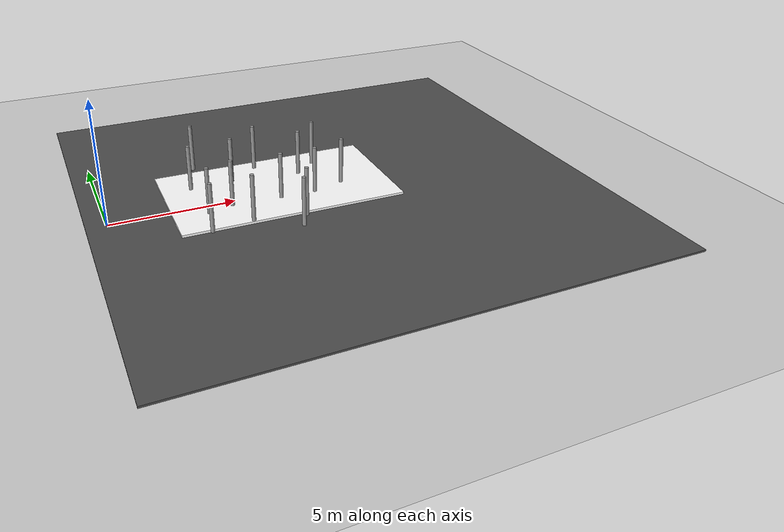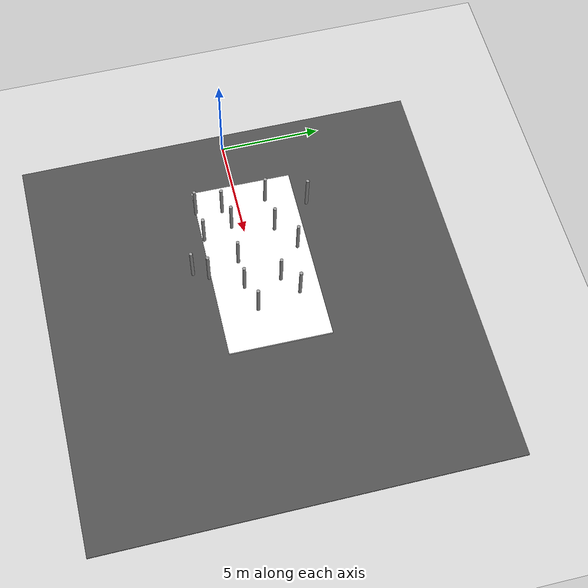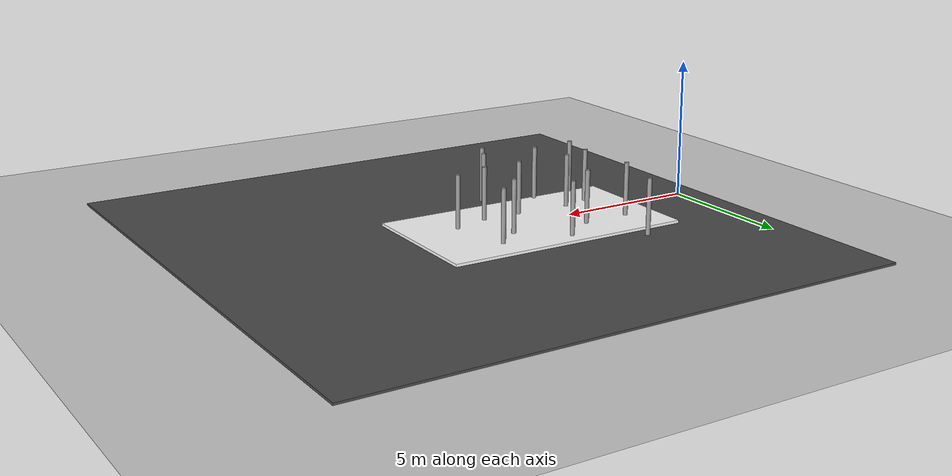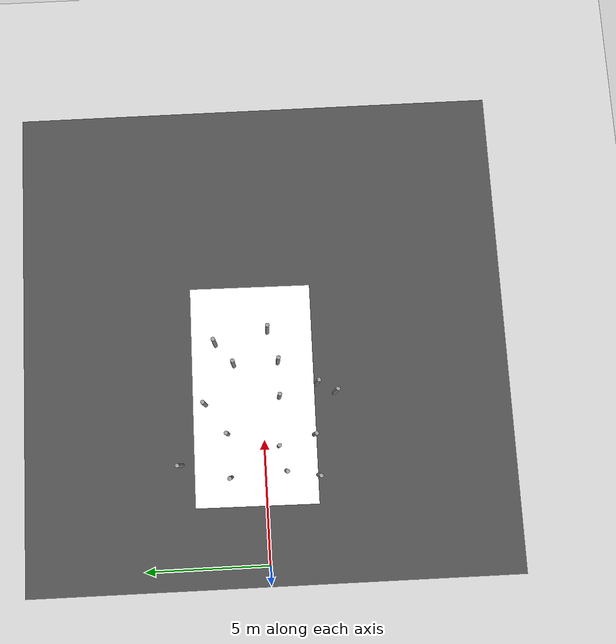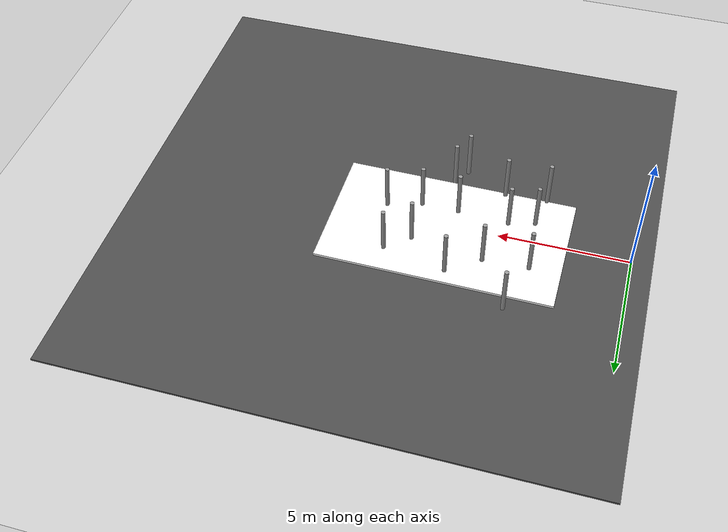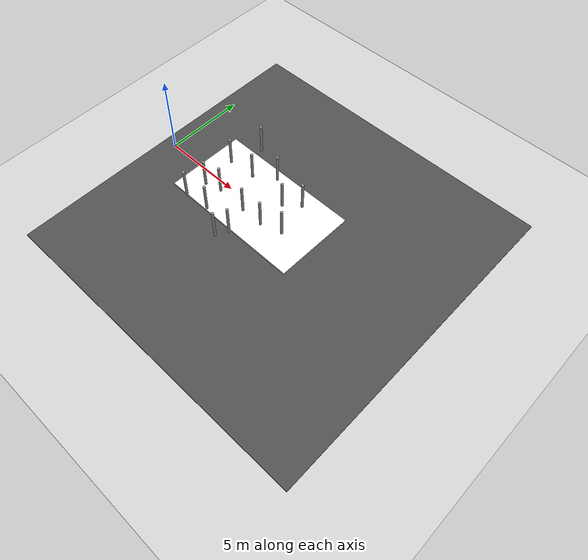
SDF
<sdf version="1.6">
 <world name="default">
  <model name="ground_plane">
   <static>1</static>
   <link name="link">
    <collision name="collision">
     <geometry><plane><normal>0 0 1</normal><size>100 100</size></plane></geometry>
     <surface><friction><ode><mu>100</mu><mu2>50</mu2></ode></friction></surface>
    </collision>
    <visual name="visual">
     <cast_shadows>0</cast_shadows>
     <geometry><plane><normal>0 0 1</normal><size>100 100</size></plane></geometry>
     <material>
      <script><uri>file://media/materials/scripts/gazebo.material</uri><name>Gazebo/Grey</name></script>
     </material>
    </visual>
   </link>
  </model>
  <model name="poste_16x200_clone_6_clone_9">
   <link name="link_1">
    <inertial>
     <mass>1</mass>
     <inertia><ixx>0.145833</ixx><ixy>0</ixy><ixz>0</ixz><iyy>0.145833</iyy><iyz>0</iyz><izz>0.125</izz></inertia>
    </inertial>
    <pose>5e-06 3e-06 0 0 -0 0</pose>
    <visual name="visual">
     <geometry><cylinder><radius>0.08</radius><length>2</length></cylinder></geometry>
     <material>
      <lighting>1</lighting>
      <script><uri>file://media/materials/scripts/gazebo.material</uri><name>Gazebo/Grey</name></script>
      <shader type="vertex"><normal_map>__default__</normal_map></shader>
      <ambient>0.3 0.3 0.3 1</ambient>
      <diffuse>0.7 0.7 0.7 1</diffuse>
      <specular>0.01 0.01 0.01 1</specular>
      <emissive>0 0 0 1</emissive>
     </material>
    </visual>
    <collision name="collision">
     <geometry><cylinder><radius>0.08</radius><length>2</length></cylinder></geometry>
     <surface>
      <friction>
       <ode><mu>1</mu><mu2>1</mu2><fdir1>0 0 0</fdir1><slip1>0</slip1><slip2>0</slip2></ode>
       <torsional>
        <coefficient>1</coefficient>
        <patch_radius>0</patch_radius>
        <surface_radius>0</surface_radius>
        <use_patch_radius>1</use_patch_radius>
        <ode><slip>0</slip></ode>
       </torsional>
      </friction>
      <bounce><restitution_coefficient>0</restitution_coefficient><threshold>1e+06</threshold></bounce>
      <contact>
       <collide_without_contact>0</collide_without_contact>
       <collide_without_contact_bitmask>1</collide_without_contact_bitmask>
       <collide_bitmask>1</collide_bitmask>
       <ode>
        <soft_cfm>0</soft_cfm>
        <soft_erp>0.2</soft_erp>
        <kp>1e+13</kp>
        <kd>1</kd>
        <max_vel>0.01</max_vel>
        <min_depth>0</min_depth>
       </ode>
       <bullet>
        <split_impulse>1</split_impulse>
        <split_impulse_penetration_threshold>-0.01</split_impulse_penetration_threshold>
        <soft_cfm>0</soft_cfm>
        <soft_erp>0.2</soft_erp>
        <kp>1e+13</kp>
        <kd>1</kd>
       </bullet>
      </contact>
     </surface>
    </collision>
   </link>
   <static>0</static>
   <pose>6.7957 -2.95609 1.05 -6.3e-05 3e-05 -0.033285</pose>
  </model>
  <model name="poste_16x200_clone_6_clone_14">
   <link name="link_1">
    <inertial>
     <mass>1</mass>
     <inertia><ixx>0.145833</ixx><ixy>0</ixy><ixz>0</ixz><iyy>0.145833</iyy><iyz>0</iyz><izz>0.125</izz></inertia>
    </inertial>
    <pose>5e-06 3e-06 0 0 -0 0</pose>
    <visual name="visual">
     <geometry><cylinder><radius>0.08</radius><length>2</length></cylinder></geometry>
     <material>
      <lighting>1</lighting>
      <script><uri>file://media/materials/scripts/gazebo.material</uri><name>Gazebo/Grey</name></script>
      <shader type="vertex"><normal_map>__default__</normal_map></shader>
      <ambient>0.3 0.3 0.3 1</ambient>
      <diffuse>0.7 0.7 0.7 1</diffuse>
      <specular>0.01 0.01 0.01 1</specular>
      <emissive>0 0 0 1</emissive>
     </material>
    </visual>
    <collision name="collision">
     <geometry><cylinder><radius>0.08</radius><length>2</length></cylinder></geometry>
     <surface>
      <friction>
       <ode><mu>1</mu><mu2>1</mu2><fdir1>0 0 0</fdir1><slip1>0</slip1><slip2>0</slip2></ode>
       <torsional>
        <coefficient>1</coefficient>
        <patch_radius>0</patch_radius>
        <surface_radius>0</surface_radius>
        <use_patch_radius>1</use_patch_radius>
        <ode><slip>0</slip></ode>
       </torsional>
      </friction>
      <bounce><restitution_coefficient>0</restitution_coefficient><threshold>1e+06</threshold></bounce>
      <contact>
       <collide_without_contact>0</collide_without_contact>
       <collide_without_contact_bitmask>1</collide_without_contact_bitmask>
       <collide_bitmask>1</collide_bitmask>
       <ode>
        <soft_cfm>0</soft_cfm>
        <soft_erp>0.2</soft_erp>
        <kp>1e+13</kp>
        <kd>1</kd>
        <max_vel>0.01</max_vel>
        <min_depth>0</min_depth>
       </ode>
       <bullet>
        <split_impulse>1</split_impulse>
        <split_impulse_penetration_threshold>-0.01</split_impulse_penetration_threshold>
        <soft_cfm>0</soft_cfm>
        <soft_erp>0.2</soft_erp>
        <kp>1e+13</kp>
        <kd>1</kd>
       </bullet>
      </contact>
     </surface>
    </collision>
   </link>
   <static>0</static>
   <pose>4.1574 3.37993 1.05 -7.5e-05 3.4e-05 -0.012222</pose>
  </model>
  <model name="asphalt_plane">
   <static>1</static>
   <link name="link">
    <collision name="collision"><geometry><box><size>20 20 0.1</size></box></geometry></collision>
    <visual name="visual">
     <cast_shadows>0</cast_shadows>
     <geometry><box><size>20 20 0.1</size></box></geometry>
     <material>
      <script>
       <uri>model://asphalt_plane/materials/scripts</uri>
       <uri>model://asphalt_plane/materials/textures</uri>
       <name>vrc/asphalt</name>
      </script>
     </material>
    </visual>
   </link>
   <pose>9.20899 -0.21691 0 0 -0 0</pose>
  </model>
  <model name="poste_16x200_clone_6_clone_9_clone">
   <link name="link_1">
    <inertial>
     <mass>1</mass>
     <inertia><ixx>0.145833</ixx><ixy>0</ixy><ixz>0</ixz><iyy>0.145833</iyy><iyz>0</iyz><izz>0.125</izz></inertia>
    </inertial>
    <pose>5e-06 3e-06 0 0 -0 0</pose>
    <visual name="visual">
     <geometry><cylinder><radius>0.08</radius><length>2</length></cylinder></geometry>
     <material>
      <lighting>1</lighting>
      <script><uri>file://media/materials/scripts/gazebo.material</uri><name>Gazebo/Grey</name></script>
      <shader type="vertex"><normal_map>__default__</normal_map></shader>
      <ambient>0.3 0.3 0.3 1</ambient>
      <diffuse>0.7 0.7 0.7 1</diffuse>
      <specular>0.01 0.01 0.01 1</specular>
      <emissive>0 0 0 1</emissive>
     </material>
    </visual>
    <collision name="collision">
     <geometry><cylinder><radius>0.08</radius><length>2</length></cylinder></geometry>
     <surface>
      <friction>
       <ode><mu>1</mu><mu2>1</mu2><fdir1>0 0 0</fdir1><slip1>0</slip1><slip2>0</slip2></ode>
       <torsional>
        <coefficient>1</coefficient>
        <patch_radius>0</patch_radius>
        <surface_radius>0</surface_radius>
        <use_patch_radius>1</use_patch_radius>
        <ode><slip>0</slip></ode>
       </torsional>
      </friction>
      <bounce><restitution_coefficient>0</restitution_coefficient><threshold>1e+06</threshold></bounce>
      <contact>
       <collide_without_contact>0</collide_without_contact>
       <collide_without_contact_bitmask>1</collide_without_contact_bitmask>
       <collide_bitmask>1</collide_bitmask>
       <ode>
        <soft_cfm>0</soft_cfm>
        <soft_erp>0.2</soft_erp>
        <kp>1e+13</kp>
        <kd>1</kd>
        <max_vel>0.01</max_vel>
        <min_depth>0</min_depth>
       </ode>
       <bullet>
        <split_impulse>1</split_impulse>
        <split_impulse_penetration_threshold>-0.01</split_impulse_penetration_threshold>
        <soft_cfm>0</soft_cfm>
        <soft_erp>0.2</soft_erp>
        <kp>1e+13</kp>
        <kd>1</kd>
       </bullet>
      </contact>
     </surface>
    </collision>
   </link>
   <static>0</static>
   <pose>5.31395 1.46112 1.05015 -0.001739 -0.000954 -0.073362</pose>
  </model>
  <model name="poste_16x200_clone_6_clone_9_clone_0">
   <link name="link_1">
    <inertial>
     <mass>1</mass>
     <inertia><ixx>0.145833</ixx><ixy>0</ixy><ixz>0</ixz><iyy>0.145833</iyy><iyz>0</iyz><izz>0.125</izz></inertia>
    </inertial>
    <pose>5e-06 3e-06 0 0 -0 0</pose>
    <visual name="visual">
     <geometry><cylinder><radius>0.08</radius><length>2</length></cylinder></geometry>
     <material>
      <lighting>1</lighting>
      <script><uri>file://media/materials/scripts/gazebo.material</uri><name>Gazebo/Grey</name></script>
      <shader type="vertex"><normal_map>__default__</normal_map></shader>
      <ambient>0.3 0.3 0.3 1</ambient>
      <diffuse>0.7 0.7 0.7 1</diffuse>
      <specular>0.01 0.01 0.01 1</specular>
      <emissive>0 0 0 1</emissive>
     </material>
    </visual>
    <collision name="collision">
     <geometry><cylinder><radius>0.08</radius><length>2</length></cylinder></geometry>
     <surface>
      <friction>
       <ode><mu>1</mu><mu2>1</mu2><fdir1>0 0 0</fdir1><slip1>0</slip1><slip2>0</slip2></ode>
       <torsional>
        <coefficient>1</coefficient>
        <patch_radius>0</patch_radius>
        <surface_radius>0</surface_radius>
        <use_patch_radius>1</use_patch_radius>
        <ode><slip>0</slip></ode>
       </torsional>
      </friction>
      <bounce><restitution_coefficient>0</restitution_coefficient><threshold>1e+06</threshold></bounce>
      <contact>
       <collide_without_contact>0</collide_without_contact>
       <collide_without_contact_bitmask>1</collide_without_contact_bitmask>
       <collide_bitmask>1</collide_bitmask>
       <ode>
        <soft_cfm>0</soft_cfm>
        <soft_erp>0.2</soft_erp>
        <kp>1e+13</kp>
        <kd>1</kd>
        <max_vel>0.01</max_vel>
        <min_depth>0</min_depth>
       </ode>
       <bullet>
        <split_impulse>1</split_impulse>
        <split_impulse_penetration_threshold>-0.01</split_impulse_penetration_threshold>
        <soft_cfm>0</soft_cfm>
        <soft_erp>0.2</soft_erp>
        <kp>1e+13</kp>
        <kd>1</kd>
       </bullet>
      </contact>
     </surface>
    </collision>
   </link>
   <static>0</static>
   <pose>8.08825 1.09921 1.05 -7.1e-05 2.7e-05 -0.05513</pose>
  </model>
  <model name="poste_16x200_clone_6_clone_9_clone_1">
   <link name="link_1">
    <inertial>
     <mass>1</mass>
     <inertia><ixx>0.145833</ixx><ixy>0</ixy><ixz>0</ixz><iyy>0.145833</iyy><iyz>0</iyz><izz>0.125</izz></inertia>
    </inertial>
    <pose>5e-06 3e-06 0 0 -0 0</pose>
    <visual name="visual">
     <geometry><cylinder><radius>0.08</radius><length>2</length></cylinder></geometry>
     <material>
      <lighting>1</lighting>
      <script><uri>file://media/materials/scripts/gazebo.material</uri><name>Gazebo/Grey</name></script>
      <shader type="vertex"><normal_map>__default__</normal_map></shader>
      <ambient>0.3 0.3 0.3 1</ambient>
      <diffuse>0.7 0.7 0.7 1</diffuse>
      <specular>0.01 0.01 0.01 1</specular>
      <emissive>0 0 0 1</emissive>
     </material>
    </visual>
    <collision name="collision">
     <geometry><cylinder><radius>0.08</radius><length>2</length></cylinder></geometry>
     <surface>
      <friction>
       <ode><mu>1</mu><mu2>1</mu2><fdir1>0 0 0</fdir1><slip1>0</slip1><slip2>0</slip2></ode>
       <torsional>
        <coefficient>1</coefficient>
        <patch_radius>0</patch_radius>
        <surface_radius>0</surface_radius>
        <use_patch_radius>1</use_patch_radius>
        <ode><slip>0</slip></ode>
       </torsional>
      </friction>
      <bounce><restitution_coefficient>0</restitution_coefficient><threshold>1e+06</threshold></bounce>
      <contact>
       <collide_without_contact>0</collide_without_contact>
       <collide_without_contact_bitmask>1</collide_without_contact_bitmask>
       <collide_bitmask>1</collide_bitmask>
       <ode>
        <soft_cfm>0</soft_cfm>
        <soft_erp>0.2</soft_erp>
        <kp>1e+13</kp>
        <kd>1</kd>
        <max_vel>0.01</max_vel>
        <min_depth>0</min_depth>
       </ode>
       <bullet>
        <split_impulse>1</split_impulse>
        <split_impulse_penetration_threshold>-0.01</split_impulse_penetration_threshold>
        <soft_cfm>0</soft_cfm>
        <soft_erp>0.2</soft_erp>
        <kp>1e+13</kp>
        <kd>1</kd>
       </bullet>
      </contact>
     </surface>
    </collision>
   </link>
   <static>0</static>
   <pose>3.51015 -2.10994 1.05011 -0.001252 0.000758 0.011857</pose>
  </model>
  <model name="poste_16x200_clone_6_clone_9_clone_3">
   <link name="link_1">
    <inertial>
     <mass>1</mass>
     <inertia><ixx>0.145833</ixx><ixy>0</ixy><ixz>0</ixz><iyy>0.145833</iyy><iyz>0</iyz><izz>0.125</izz></inertia>
    </inertial>
    <pose>5e-06 3e-06 0 0 -0 0</pose>
    <visual name="visual">
     <geometry><cylinder><radius>0.08</radius><length>2</length></cylinder></geometry>
     <material>
      <lighting>1</lighting>
      <script><uri>file://media/materials/scripts/gazebo.material</uri><name>Gazebo/Grey</name></script>
      <shader type="vertex"><normal_map>__default__</normal_map></shader>
      <ambient>0.3 0.3 0.3 1</ambient>
      <diffuse>0.7 0.7 0.7 1</diffuse>
      <specular>0.01 0.01 0.01 1</specular>
      <emissive>0 0 0 1</emissive>
     </material>
    </visual>
    <collision name="collision">
     <geometry><cylinder><radius>0.08</radius><length>2</length></cylinder></geometry>
     <surface>
      <friction>
       <ode><mu>1</mu><mu2>1</mu2><fdir1>0 0 0</fdir1><slip1>0</slip1><slip2>0</slip2></ode>
       <torsional>
        <coefficient>1</coefficient>
        <patch_radius>0</patch_radius>
        <surface_radius>0</surface_radius>
        <use_patch_radius>1</use_patch_radius>
        <ode><slip>0</slip></ode>
       </torsional>
      </friction>
      <bounce><restitution_coefficient>0</restitution_coefficient><threshold>1e+06</threshold></bounce>
      <contact>
       <collide_without_contact>0</collide_without_contact>
       <collide_without_contact_bitmask>1</collide_without_contact_bitmask>
       <collide_bitmask>1</collide_bitmask>
       <ode>
        <soft_cfm>0</soft_cfm>
        <soft_erp>0.2</soft_erp>
        <kp>1e+13</kp>
        <kd>1</kd>
        <max_vel>0.01</max_vel>
        <min_depth>0</min_depth>
       </ode>
       <bullet>
        <split_impulse>1</split_impulse>
        <split_impulse_penetration_threshold>-0.01</split_impulse_penetration_threshold>
        <soft_cfm>0</soft_cfm>
        <soft_erp>0.2</soft_erp>
        <kp>1e+13</kp>
        <kd>1</kd>
       </bullet>
      </contact>
     </surface>
    </collision>
   </link>
   <static>0</static>
   <pose>8.12309 -0.705062 1.05001 -6.5e-05 3.1e-05 -0.057177</pose>
  </model>
  <model name="poste_16x200_clone_6_clone_9_clone_4">
   <link name="link_1">
    <inertial>
     <mass>1</mass>
     <inertia><ixx>0.145833</ixx><ixy>0</ixy><ixz>0</ixz><iyy>0.145833</iyy><iyz>0</iyz><izz>0.125</izz></inertia>
    </inertial>
    <pose>5e-06 3e-06 0 0 -0 0</pose>
    <visual name="visual">
     <geometry><cylinder><radius>0.08</radius><length>2</length></cylinder></geometry>
     <material>
      <lighting>1</lighting>
      <script><uri>file://media/materials/scripts/gazebo.material</uri><name>Gazebo/Grey</name></script>
      <shader type="vertex"><normal_map>__default__</normal_map></shader>
      <ambient>0.3 0.3 0.3 1</ambient>
      <diffuse>0.7 0.7 0.7 1</diffuse>
      <specular>0.01 0.01 0.01 1</specular>
      <emissive>0 0 0 1</emissive>
     </material>
    </visual>
    <collision name="collision">
     <geometry><cylinder><radius>0.08</radius><length>2</length></cylinder></geometry>
     <surface>
      <friction>
       <ode><mu>1</mu><mu2>1</mu2><fdir1>0 0 0</fdir1><slip1>0</slip1><slip2>0</slip2></ode>
       <torsional>
        <coefficient>1</coefficient>
        <patch_radius>0</patch_radius>
        <surface_radius>0</surface_radius>
        <use_patch_radius>1</use_patch_radius>
        <ode><slip>0</slip></ode>
       </torsional>
      </friction>
      <bounce><restitution_coefficient>0</restitution_coefficient><threshold>1e+06</threshold></bounce>
      <contact>
       <collide_without_contact>0</collide_without_contact>
       <collide_without_contact_bitmask>1</collide_without_contact_bitmask>
       <collide_bitmask>1</collide_bitmask>
       <ode>
        <soft_cfm>0</soft_cfm>
        <soft_erp>0.2</soft_erp>
        <kp>1e+13</kp>
        <kd>1</kd>
        <max_vel>0.01</max_vel>
        <min_depth>0</min_depth>
       </ode>
       <bullet>
        <split_impulse>1</split_impulse>
        <split_impulse_penetration_threshold>-0.01</split_impulse_penetration_threshold>
        <soft_cfm>0</soft_cfm>
        <soft_erp>0.2</soft_erp>
        <kp>1e+13</kp>
        <kd>1</kd>
       </bullet>
      </contact>
     </surface>
    </collision>
   </link>
   <static>0</static>
   <pose>6.69989 -0.687689 1.05001 -6.8e-05 3e-05 -0.045867</pose>
  </model>
  <model name="poste_16x200_clone_6_clone_9_clone_5">
   <link name="link_1">
    <inertial>
     <mass>1</mass>
     <inertia><ixx>0.145833</ixx><ixy>0</ixy><ixz>0</ixz><iyy>0.145833</iyy><iyz>0</iyz><izz>0.125</izz></inertia>
    </inertial>
    <pose>5e-06 3e-06 0 0 -0 0</pose>
    <visual name="visual">
     <geometry><cylinder><radius>0.08</radius><length>2</length></cylinder></geometry>
     <material>
      <lighting>1</lighting>
      <script><uri>file://media/materials/scripts/gazebo.material</uri><name>Gazebo/Grey</name></script>
      <shader type="vertex"><normal_map>__default__</normal_map></shader>
      <ambient>0.3 0.3 0.3 1</ambient>
      <diffuse>0.7 0.7 0.7 1</diffuse>
      <specular>0.01 0.01 0.01 1</specular>
      <emissive>0 0 0 1</emissive>
     </material>
    </visual>
    <collision name="collision">
     <geometry><cylinder><radius>0.08</radius><length>2</length></cylinder></geometry>
     <surface>
      <friction>
       <ode><mu>1</mu><mu2>1</mu2><fdir1>0 0 0</fdir1><slip1>0</slip1><slip2>0</slip2></ode>
       <torsional>
        <coefficient>1</coefficient>
        <patch_radius>0</patch_radius>
        <surface_radius>0</surface_radius>
        <use_patch_radius>1</use_patch_radius>
        <ode><slip>0</slip></ode>
       </torsional>
      </friction>
      <bounce><restitution_coefficient>0</restitution_coefficient><threshold>1e+06</threshold></bounce>
      <contact>
       <collide_without_contact>0</collide_without_contact>
       <collide_without_contact_bitmask>1</collide_without_contact_bitmask>
       <collide_bitmask>1</collide_bitmask>
       <ode>
        <soft_cfm>0</soft_cfm>
        <soft_erp>0.2</soft_erp>
        <kp>1e+13</kp>
        <kd>1</kd>
        <max_vel>0.01</max_vel>
        <min_depth>0</min_depth>
       </ode>
       <bullet>
        <split_impulse>1</split_impulse>
        <split_impulse_penetration_threshold>-0.01</split_impulse_penetration_threshold>
        <soft_cfm>0</soft_cfm>
        <soft_erp>0.2</soft_erp>
        <kp>1e+13</kp>
        <kd>1</kd>
       </bullet>
      </contact>
     </surface>
    </collision>
   </link>
   <static>0</static>
   <pose>4.73305 -0.571596 1.05012 0.001306 -0.000907 -0.020238</pose>
  </model>
  <model name="poste_16x200_clone_6_clone_9_clone_6">
   <link name="link_1">
    <inertial>
     <mass>1</mass>
     <inertia><ixx>0.145833</ixx><ixy>0</ixy><ixz>0</ixz><iyy>0.145833</iyy><iyz>0</iyz><izz>0.125</izz></inertia>
    </inertial>
    <pose>5e-06 3e-06 0 0 -0 0</pose>
    <visual name="visual">
     <geometry><cylinder><radius>0.08</radius><length>2</length></cylinder></geometry>
     <material>
      <lighting>1</lighting>
      <script><uri>file://media/materials/scripts/gazebo.material</uri><name>Gazebo/Grey</name></script>
      <shader type="vertex"><normal_map>__default__</normal_map></shader>
      <ambient>0.3 0.3 0.3 1</ambient>
      <diffuse>0.7 0.7 0.7 1</diffuse>
      <specular>0.01 0.01 0.01 1</specular>
      <emissive>0 0 0 1</emissive>
     </material>
    </visual>
    <collision name="collision">
     <geometry><cylinder><radius>0.08</radius><length>2</length></cylinder></geometry>
     <surface>
      <friction>
       <ode><mu>1</mu><mu2>1</mu2><fdir1>0 0 0</fdir1><slip1>0</slip1><slip2>0</slip2></ode>
       <torsional>
        <coefficient>1</coefficient>
        <patch_radius>0</patch_radius>
        <surface_radius>0</surface_radius>
        <use_patch_radius>1</use_patch_radius>
        <ode><slip>0</slip></ode>
       </torsional>
      </friction>
      <bounce><restitution_coefficient>0</restitution_coefficient><threshold>1e+06</threshold></bounce>
      <contact>
       <collide_without_contact>0</collide_without_contact>
       <collide_without_contact_bitmask>1</collide_without_contact_bitmask>
       <collide_bitmask>1</collide_bitmask>
       <ode>
        <soft_cfm>0</soft_cfm>
        <soft_erp>0.2</soft_erp>
        <kp>1e+13</kp>
        <kd>1</kd>
        <max_vel>0.01</max_vel>
        <min_depth>0</min_depth>
       </ode>
       <bullet>
        <split_impulse>1</split_impulse>
        <split_impulse_penetration_threshold>-0.01</split_impulse_penetration_threshold>
        <soft_cfm>0</soft_cfm>
        <soft_erp>0.2</soft_erp>
        <kp>1e+13</kp>
        <kd>1</kd>
       </bullet>
      </contact>
     </surface>
    </collision>
   </link>
   <static>0</static>
   <pose>9.42215 -0.337381 1.05001 -7e-05 7e-05 -0.047786</pose>
  </model>
  <model name="poste_16x200_clone_6_clone_9_clone_8">
   <link name="link_1">
    <inertial>
     <mass>1</mass>
     <inertia><ixx>0.145833</ixx><ixy>0</ixy><ixz>0</ixz><iyy>0.145833</iyy><iyz>0</iyz><izz>0.125</izz></inertia>
    </inertial>
    <pose>5e-06 3e-06 0 0 -0 0</pose>
    <visual name="visual">
     <geometry><cylinder><radius>0.08</radius><length>2</length></cylinder></geometry>
     <material>
      <lighting>1</lighting>
      <script><uri>file://media/materials/scripts/gazebo.material</uri><name>Gazebo/Grey</name></script>
      <shader type="vertex"><normal_map>__default__</normal_map></shader>
      <ambient>0.3 0.3 0.3 1</ambient>
      <diffuse>0.7 0.7 0.7 1</diffuse>
      <specular>0.01 0.01 0.01 1</specular>
      <emissive>0 0 0 1</emissive>
     </material>
    </visual>
    <collision name="collision">
     <geometry><cylinder><radius>0.08</radius><length>2</length></cylinder></geometry>
     <surface>
      <friction>
       <ode><mu>1</mu><mu2>1</mu2><fdir1>0 0 0</fdir1><slip1>0</slip1><slip2>0</slip2></ode>
       <torsional>
        <coefficient>1</coefficient>
        <patch_radius>0</patch_radius>
        <surface_radius>0</surface_radius>
        <use_patch_radius>1</use_patch_radius>
        <ode><slip>0</slip></ode>
       </torsional>
      </friction>
      <bounce><restitution_coefficient>0</restitution_coefficient><threshold>1e+06</threshold></bounce>
      <contact>
       <collide_without_contact>0</collide_without_contact>
       <collide_without_contact_bitmask>1</collide_without_contact_bitmask>
       <collide_bitmask>1</collide_bitmask>
       <ode>
        <soft_cfm>0</soft_cfm>
        <soft_erp>0.2</soft_erp>
        <kp>1e+13</kp>
        <kd>1</kd>
        <max_vel>0.01</max_vel>
        <min_depth>0</min_depth>
       </ode>
       <bullet>
        <split_impulse>1</split_impulse>
        <split_impulse_penetration_threshold>-0.01</split_impulse_penetration_threshold>
        <soft_cfm>0</soft_cfm>
        <soft_erp>0.2</soft_erp>
        <kp>1e+13</kp>
        <kd>1</kd>
       </bullet>
      </contact>
     </surface>
    </collision>
   </link>
   <static>0</static>
   <pose>3.57742 1.39501 1.05008 -0.000962 0.000636 -0.05246</pose>
  </model>
  <model name="poste_16x200_clone_6_clone_9_clone_9">
   <link name="link_1">
    <inertial>
     <mass>1</mass>
     <inertia><ixx>0.145833</ixx><ixy>0</ixy><ixz>0</ixz><iyy>0.145833</iyy><iyz>0</iyz><izz>0.125</izz></inertia>
    </inertial>
    <pose>5e-06 3e-06 0 0 -0 0</pose>
    <visual name="visual">
     <geometry><cylinder><radius>0.08</radius><length>2</length></cylinder></geometry>
     <material>
      <lighting>1</lighting>
      <script><uri>file://media/materials/scripts/gazebo.material</uri><name>Gazebo/Grey</name></script>
      <shader type="vertex"><normal_map>__default__</normal_map></shader>
      <ambient>0.3 0.3 0.3 1</ambient>
      <diffuse>0.7 0.7 0.7 1</diffuse>
      <specular>0.01 0.01 0.01 1</specular>
      <emissive>0 0 0 1</emissive>
     </material>
    </visual>
    <collision name="collision">
     <geometry><cylinder><radius>0.08</radius><length>2</length></cylinder></geometry>
     <surface>
      <friction>
       <ode><mu>1</mu><mu2>1</mu2><fdir1>0 0 0</fdir1><slip1>0</slip1><slip2>0</slip2></ode>
       <torsional>
        <coefficient>1</coefficient>
        <patch_radius>0</patch_radius>
        <surface_radius>0</surface_radius>
        <use_patch_radius>1</use_patch_radius>
        <ode><slip>0</slip></ode>
       </torsional>
      </friction>
      <bounce><restitution_coefficient>0</restitution_coefficient><threshold>1e+06</threshold></bounce>
      <contact>
       <collide_without_contact>0</collide_without_contact>
       <collide_without_contact_bitmask>1</collide_without_contact_bitmask>
       <collide_bitmask>1</collide_bitmask>
       <ode>
        <soft_cfm>0</soft_cfm>
        <soft_erp>0.2</soft_erp>
        <kp>1e+13</kp>
        <kd>1</kd>
        <max_vel>0.01</max_vel>
        <min_depth>0</min_depth>
       </ode>
       <bullet>
        <split_impulse>1</split_impulse>
        <split_impulse_penetration_threshold>-0.01</split_impulse_penetration_threshold>
        <soft_cfm>0</soft_cfm>
        <soft_erp>0.2</soft_erp>
        <kp>1e+13</kp>
        <kd>1</kd>
       </bullet>
      </contact>
     </surface>
    </collision>
   </link>
   <static>0</static>
   <pose>5.12621 -2.02925 1.05001 -7e-05 3e-05 -0.028901</pose>
  </model>
  <model name="poste_16x200_clone_6_clone_9_clone_10">
   <link name="link_1">
    <inertial>
     <mass>1</mass>
     <inertia><ixx>0.145833</ixx><ixy>0</ixy><ixz>0</ixz><iyy>0.145833</iyy><iyz>0</iyz><izz>0.125</izz></inertia>
    </inertial>
    <pose>5e-06 3e-06 0 0 -0 0</pose>
    <visual name="visual">
     <geometry><cylinder><radius>0.08</radius><length>2</length></cylinder></geometry>
     <material>
      <lighting>1</lighting>
      <script><uri>file://media/materials/scripts/gazebo.material</uri><name>Gazebo/Grey</name></script>
      <shader type="vertex"><normal_map>__default__</normal_map></shader>
      <ambient>0.3 0.3 0.3 1</ambient>
      <diffuse>0.7 0.7 0.7 1</diffuse>
      <specular>0.01 0.01 0.01 1</specular>
      <emissive>0 0 0 1</emissive>
     </material>
    </visual>
    <collision name="collision">
     <geometry><cylinder><radius>0.08</radius><length>2</length></cylinder></geometry>
     <surface>
      <friction>
       <ode><mu>1</mu><mu2>1</mu2><fdir1>0 0 0</fdir1><slip1>0</slip1><slip2>0</slip2></ode>
       <torsional>
        <coefficient>1</coefficient>
        <patch_radius>0</patch_radius>
        <surface_radius>0</surface_radius>
        <use_patch_radius>1</use_patch_radius>
        <ode><slip>0</slip></ode>
       </torsional>
      </friction>
      <bounce><restitution_coefficient>0</restitution_coefficient><threshold>1e+06</threshold></bounce>
      <contact>
       <collide_without_contact>0</collide_without_contact>
       <collide_without_contact_bitmask>1</collide_without_contact_bitmask>
       <collide_bitmask>1</collide_bitmask>
       <ode>
        <soft_cfm>0</soft_cfm>
        <soft_erp>0.2</soft_erp>
        <kp>1e+13</kp>
        <kd>1</kd>
        <max_vel>0.01</max_vel>
        <min_depth>0</min_depth>
       </ode>
       <bullet>
        <split_impulse>1</split_impulse>
        <split_impulse_penetration_threshold>-0.01</split_impulse_penetration_threshold>
        <soft_cfm>0</soft_cfm>
        <soft_erp>0.2</soft_erp>
        <kp>1e+13</kp>
        <kd>1</kd>
       </bullet>
      </contact>
     </surface>
    </collision>
   </link>
   <static>0</static>
   <pose>7.18108 -2.24153 1.05 -7.8e-05 3.3e-05 -0.041023</pose>
  </model>
  <model name="poste_16x200_clone_6_clone_9_clone_15">
   <link name="link_1">
    <inertial>
     <mass>1</mass>
     <inertia><ixx>0.145833</ixx><ixy>0</ixy><ixz>0</ixz><iyy>0.145833</iyy><iyz>0</iyz><izz>0.125</izz></inertia>
    </inertial>
    <pose>5e-06 3e-06 0 0 -0 0</pose>
    <visual name="visual">
     <geometry><cylinder><radius>0.08</radius><length>2</length></cylinder></geometry>
     <material>
      <lighting>1</lighting>
      <script><uri>file://media/materials/scripts/gazebo.material</uri><name>Gazebo/Grey</name></script>
      <shader type="vertex"><normal_map>__default__</normal_map></shader>
      <ambient>0.3 0.3 0.3 1</ambient>
      <diffuse>0.7 0.7 0.7 1</diffuse>
      <specular>0.01 0.01 0.01 1</specular>
      <emissive>0 0 0 1</emissive>
     </material>
    </visual>
    <collision name="collision">
     <geometry><cylinder><radius>0.08</radius><length>2</length></cylinder></geometry>
     <surface>
      <friction>
       <ode><mu>1</mu><mu2>1</mu2><fdir1>0 0 0</fdir1><slip1>0</slip1><slip2>0</slip2></ode>
       <torsional>
        <coefficient>1</coefficient>
        <patch_radius>0</patch_radius>
        <surface_radius>0</surface_radius>
        <use_patch_radius>1</use_patch_radius>
        <ode><slip>0</slip></ode>
       </torsional>
      </friction>
      <bounce><restitution_coefficient>0</restitution_coefficient><threshold>1e+06</threshold></bounce>
      <contact>
       <collide_without_contact>0</collide_without_contact>
       <collide_without_contact_bitmask>1</collide_without_contact_bitmask>
       <collide_bitmask>1</collide_bitmask>
       <ode>
        <soft_cfm>0</soft_cfm>
        <soft_erp>0.2</soft_erp>
        <kp>1e+13</kp>
        <kd>1</kd>
        <max_vel>0.01</max_vel>
        <min_depth>0</min_depth>
       </ode>
       <bullet>
        <split_impulse>1</split_impulse>
        <split_impulse_penetration_threshold>-0.01</split_impulse_penetration_threshold>
        <soft_cfm>0</soft_cfm>
        <soft_erp>0.2</soft_erp>
        <kp>1e+13</kp>
        <kd>1</kd>
       </bullet>
      </contact>
     </surface>
    </collision>
   </link>
   <static>0</static>
   <pose>8.97724 1.81822 1.04999 -1.4e-05 3e-05 -0.035396</pose>
  </model>
  <model name="floor_image">
   <link name="box">
    <pose>-0 -1.5 -0 0 -0 0</pose>
    <inertial>
     <inertia><ixx>1</ixx><ixy>0</ixy><ixz>0</ixz><iyy>1</iyy><iyz>0</iyz><izz>1</izz></inertia>
     <mass>100</mass>
    </inertial>
    <gravity>0</gravity>
    <visual name="visual">
     <geometry><box><size>5 9 0.1</size></box></geometry>
     <material>
      <script>
       <uri>model://floor/materials/scripts</uri>
       <uri>model://floor/materials/textures</uri>
       <name>TexturedFloor/Image</name>
      </script>
      <shader type="pixel"><normal_map>__default__</normal_map></shader>
      <ambient>1 1 1 1</ambient>
      <diffuse>1 1 1 1</diffuse>
      <specular>0 0 0 1</specular>
      <emissive>0 0 0 1</emissive>
     </material>
    </visual>
   </link>
   <static>0</static>
   <pose>5.38152 0.366697 0.099958 2.3e-05 6e-06 1.56043</pose>
  </model>
  <model name="poste_16x200_clone_6_clone_14_clone">
   <link name="link_1">
    <inertial>
     <mass>1</mass>
     <inertia><ixx>0.145833</ixx><ixy>0</ixy><ixz>0</ixz><iyy>0.145833</iyy><iyz>0</iyz><izz>0.125</izz></inertia>
    </inertial>
    <pose>5e-06 3e-06 0 0 -0 0</pose>
    <visual name="visual">
     <geometry><cylinder><radius>0.08</radius><length>2</length></cylinder></geometry>
     <material>
      <lighting>1</lighting>
      <script><uri>file://media/materials/scripts/gazebo.material</uri><name>Gazebo/Grey</name></script>
      <shader type="vertex"><normal_map>__default__</normal_map></shader>
      <ambient>0.3 0.3 0.3 1</ambient>
      <diffuse>0.7 0.7 0.7 1</diffuse>
      <specular>0.01 0.01 0.01 1</specular>
      <emissive>0 0 0 1</emissive>
     </material>
    </visual>
    <collision name="collision">
     <geometry><cylinder><radius>0.08</radius><length>2</length></cylinder></geometry>
     <surface>
      <friction>
       <ode><mu>1</mu><mu2>1</mu2><fdir1>0 0 0</fdir1><slip1>0</slip1><slip2>0</slip2></ode>
       <torsional>
        <coefficient>1</coefficient>
        <patch_radius>0</patch_radius>
        <surface_radius>0</surface_radius>
        <use_patch_radius>1</use_patch_radius>
        <ode><slip>0</slip></ode>
       </torsional>
      </friction>
      <bounce><restitution_coefficient>0</restitution_coefficient><threshold>1e+06</threshold></bounce>
      <contact>
       <collide_without_contact>0</collide_without_contact>
       <collide_without_contact_bitmask>1</collide_without_contact_bitmask>
       <collide_bitmask>1</collide_bitmask>
       <ode>
        <soft_cfm>0</soft_cfm>
        <soft_erp>0.2</soft_erp>
        <kp>1e+13</kp>
        <kd>1</kd>
        <max_vel>0.01</max_vel>
        <min_depth>0</min_depth>
       </ode>
       <bullet>
        <split_impulse>1</split_impulse>
        <split_impulse_penetration_threshold>-0.01</split_impulse_penetration_threshold>
        <soft_cfm>0</soft_cfm>
        <soft_erp>0.2</soft_erp>
        <kp>1e+13</kp>
        <kd>1</kd>
       </bullet>
      </contact>
     </surface>
    </collision>
   </link>
   <static>0</static>
   <pose>6.53671 2.31764 1.05 -7.5e-05 3.2e-05 -0.012197</pose>
  </model>
  <model name="poste_16x200_clone_6_clone_14_clone_2">
   <link name="link_1">
    <inertial>
     <mass>1</mass>
     <inertia><ixx>0.145833</ixx><ixy>0</ixy><ixz>0</ixz><iyy>0.145833</iyy><iyz>0</iyz><izz>0.125</izz></inertia>
    </inertial>
    <pose>5e-06 3e-06 0 0 -0 0</pose>
    <visual name="visual">
     <geometry><cylinder><radius>0.08</radius><length>2</length></cylinder></geometry>
     <material>
      <lighting>1</lighting>
      <script><uri>file://media/materials/scripts/gazebo.material</uri><name>Gazebo/Grey</name></script>
      <shader type="vertex"><normal_map>__default__</normal_map></shader>
      <ambient>0.3 0.3 0.3 1</ambient>
      <diffuse>0.7 0.7 0.7 1</diffuse>
      <specular>0.01 0.01 0.01 1</specular>
      <emissive>0 0 0 1</emissive>
     </material>
    </visual>
    <collision name="collision">
     <geometry><cylinder><radius>0.08</radius><length>2</length></cylinder></geometry>
     <surface>
      <friction>
       <ode><mu>1</mu><mu2>1</mu2><fdir1>0 0 0</fdir1><slip1>0</slip1><slip2>0</slip2></ode>
       <torsional>
        <coefficient>1</coefficient>
        <patch_radius>0</patch_radius>
        <surface_radius>0</surface_radius>
        <use_patch_radius>1</use_patch_radius>
        <ode><slip>0</slip></ode>
       </torsional>
      </friction>
      <bounce><restitution_coefficient>0</restitution_coefficient><threshold>1e+06</threshold></bounce>
      <contact>
       <collide_without_contact>0</collide_without_contact>
       <collide_without_contact_bitmask>1</collide_without_contact_bitmask>
       <collide_bitmask>1</collide_bitmask>
       <ode>
        <soft_cfm>0</soft_cfm>
        <soft_erp>0.2</soft_erp>
        <kp>1e+13</kp>
        <kd>1</kd>
        <max_vel>0.01</max_vel>
        <min_depth>0</min_depth>
       </ode>
       <bullet>
        <split_impulse>1</split_impulse>
        <split_impulse_penetration_threshold>-0.01</split_impulse_penetration_threshold>
        <soft_cfm>0</soft_cfm>
        <soft_erp>0.2</soft_erp>
        <kp>1e+13</kp>
        <kd>1</kd>
       </bullet>
      </contact>
     </surface>
    </collision>
   </link>
   <static>0</static>
   <pose>3.73778 -0.830476 1.05001 -7.3e-05 3.2e-05 -0.012172</pose>
  </model>
 </world>
</sdf>
